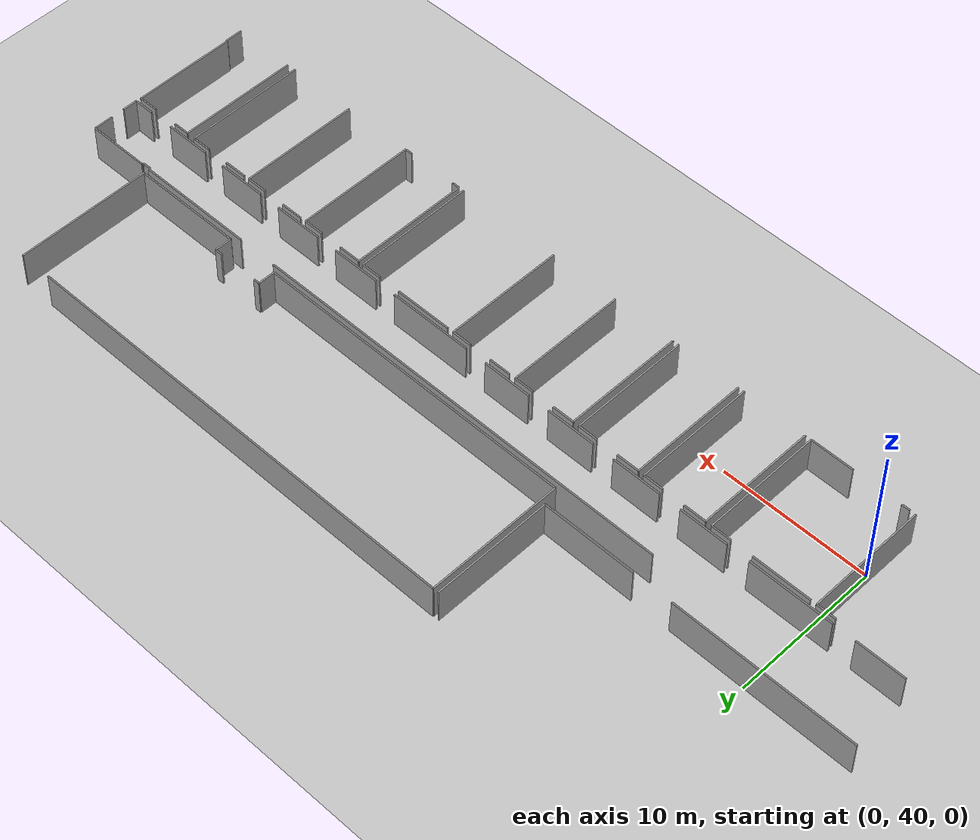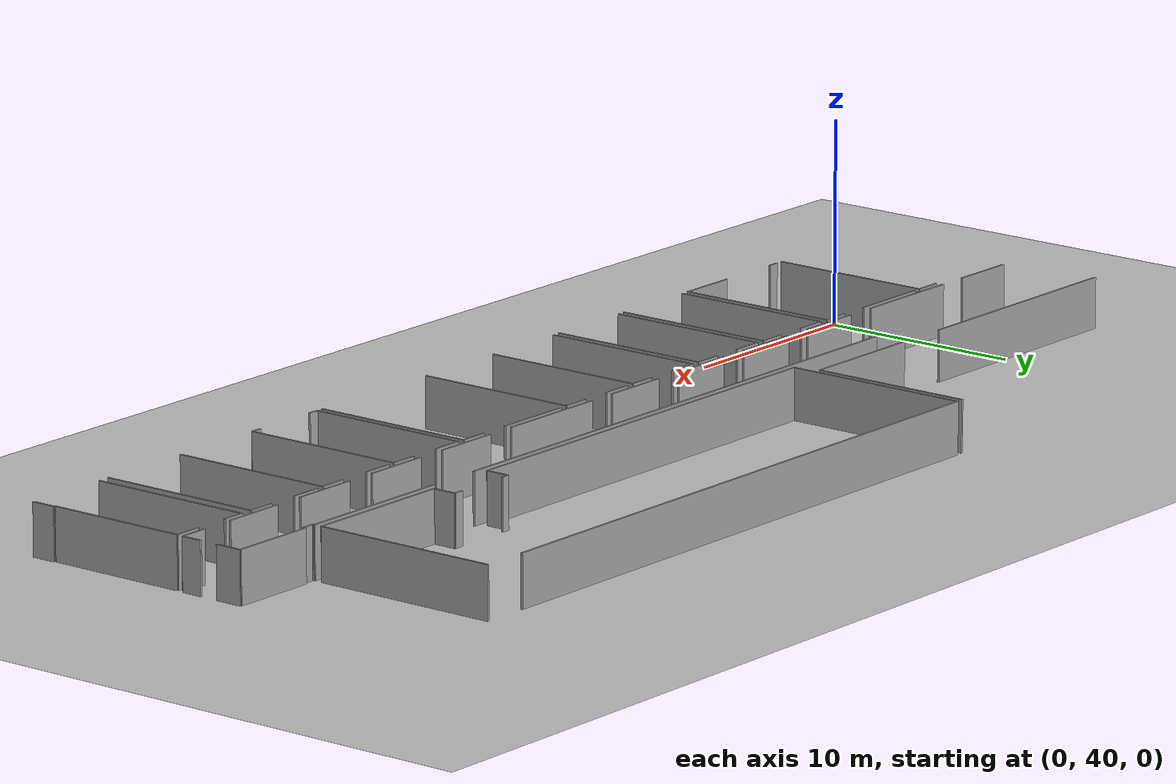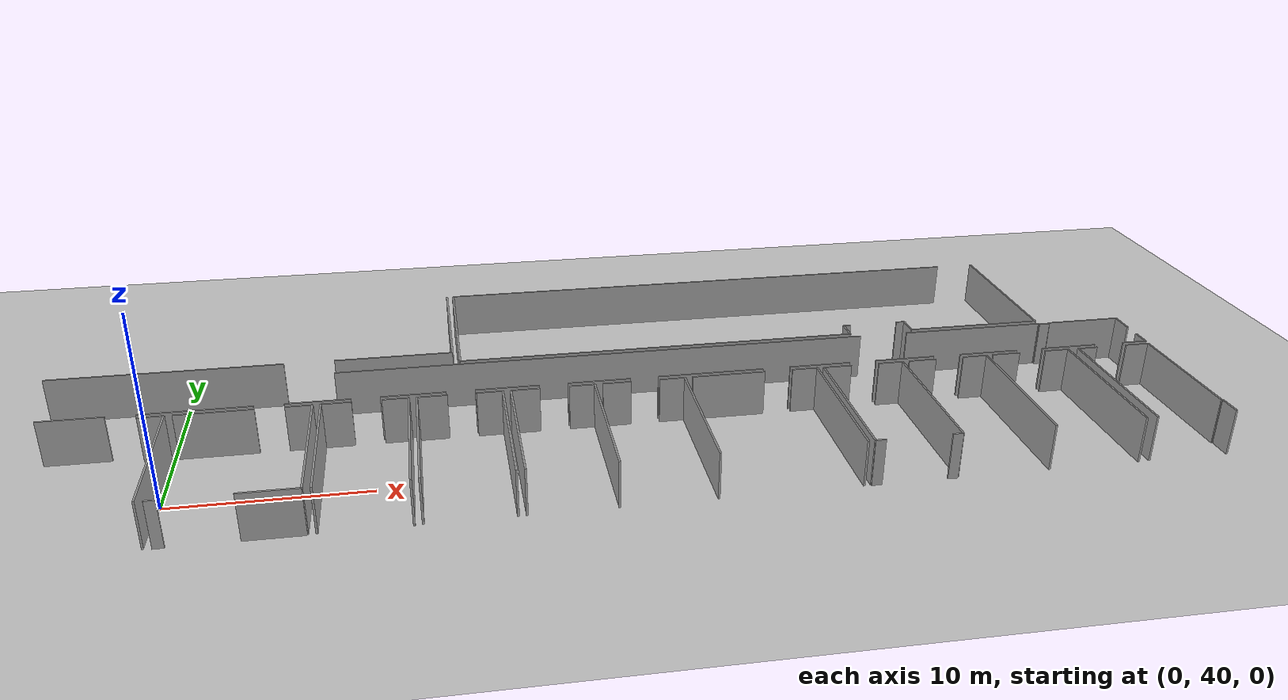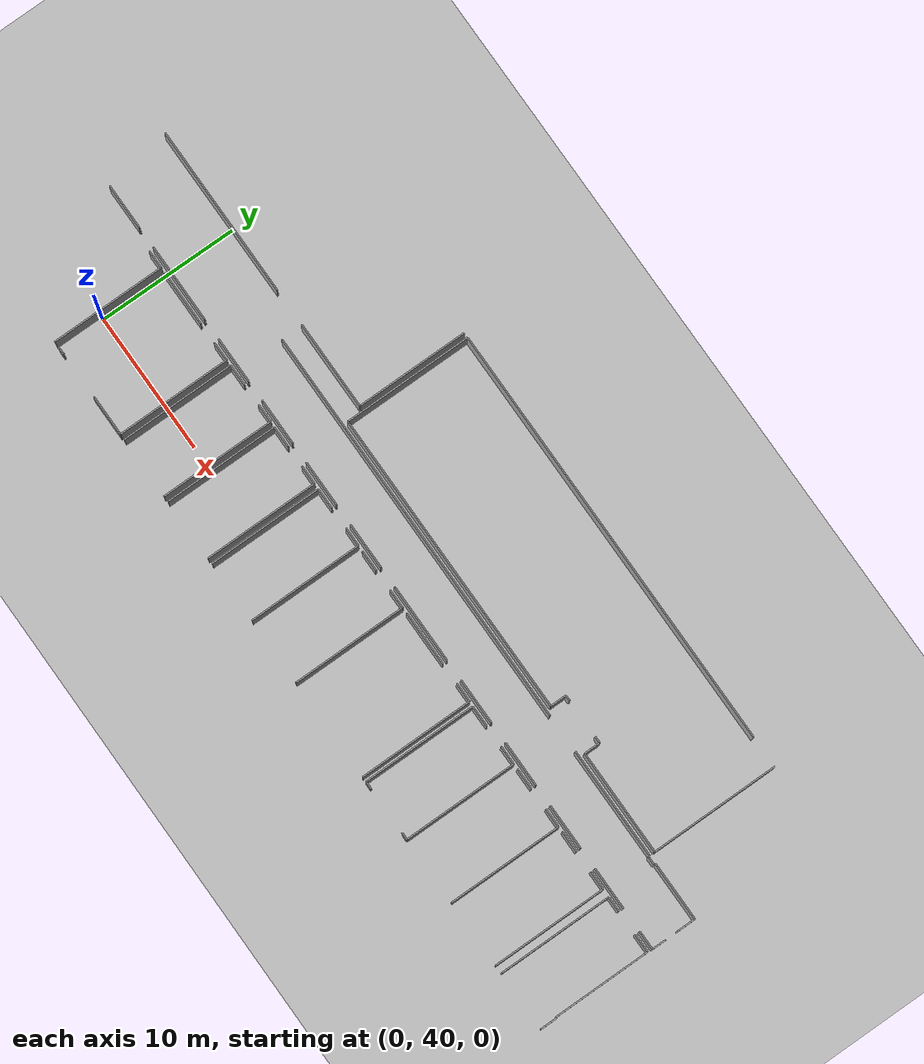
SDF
<sdf version="1.6">
 <world name="default">
  <model name="ground_plane">
   <static>1</static>
   <link name="link">
    <collision name="collision">
     <geometry><plane><normal>0 0 1</normal><size>100 100</size></plane></geometry>
     <surface><friction><ode><mu>100</mu><mu2>50</mu2></ode></friction></surface>
    </collision>
    <visual name="visual">
     <cast_shadows>0</cast_shadows>
     <geometry><plane><normal>0 0 1</normal><size>100 100</size></plane></geometry>
     <material>
      <script><uri>file://media/materials/scripts/gazebo.material</uri><name>Gazebo/Grey</name></script>
     </material>
    </visual>
   </link>
  </model>
  <model name="0510035517_A_40_1_105">
   <static>1</static>
   <link name="Wall_183">
    <collision name="Wall_183_Collision">
     <geometry><box><size>8.05474542994 0.1 2.5</size></box></geometry>
     <pose>4.02737271497 0 1.25 0 0 0</pose>
    </collision>
    <visual name="Wall_183_Visual">
     <pose>4.02737271497 0 1.25 0 0 0</pose>
     <geometry><box><size>8.05474542994 0.1 2.5</size></box></geometry>
     <material>
      <script><uri>file://media/materials/scripts/gazebo.material</uri><name>Gazebo/Grey</name></script>
      <ambient>1 1 1 1</ambient>
     </material>
    </visual>
    <pose>108.796756956 -5.78715617316 0 0 0 -1.57079632679</pose>
   </link>
   <link name="Wall_184">
    <collision name="Wall_184_Collision">
     <geometry><box><size>6.35341809471 0.1 2.5</size></box></geometry>
     <pose>3.17670904736 0 1.25 0 0 0</pose>
    </collision>
    <visual name="Wall_184_Visual">
     <pose>3.17670904736 0 1.25 0 0 0</pose>
     <geometry><box><size>6.35341809471 0.1 2.5</size></box></geometry>
     <material>
      <script><uri>file://media/materials/scripts/gazebo.material</uri><name>Gazebo/Grey</name></script>
      <ambient>1 1 1 1</ambient>
     </material>
    </visual>
    <pose>108.796756956 -13.8419016031 0 0 0 3.14159265359</pose>
   </link>
   <link name="Wall_185">
    <collision name="Wall_185_Collision">
     <geometry><box><size>12.3461873265 0.1 2.5</size></box></geometry>
     <pose>6.17309366323 0 1.25 0 0 0</pose>
    </collision>
    <visual name="Wall_185_Visual">
     <pose>6.17309366323 0 1.25 0 0 0</pose>
     <geometry><box><size>12.3461873265 0.1 2.5</size></box></geometry>
     <material>
      <script><uri>file://media/materials/scripts/gazebo.material</uri><name>Gazebo/Grey</name></script>
      <ambient>1 1 1 1</ambient>
     </material>
    </visual>
    <pose>99.767573372 -13.8419016031 0 0 0 3.14159265359</pose>
   </link>
   <link name="Wall_188">
    <collision name="Wall_188_Collision">
     <geometry><box><size>9.2393714696 0.1 2.5</size></box></geometry>
     <pose>4.6196857348 0 1.25 0 0 0</pose>
    </collision>
    <visual name="Wall_188_Visual">
     <pose>4.6196857348 0 1.25 0 0 0</pose>
     <geometry><box><size>9.2393714696 0.1 2.5</size></box></geometry>
     <material>
      <script><uri>file://media/materials/scripts/gazebo.material</uri><name>Gazebo/Grey</name></script>
      <ambient>1 1 1 1</ambient>
     </material>
    </visual>
    <pose>109.164522217 -15.0216986587 0 0 0 1.57079632679</pose>
   </link>
   <link name="Wall_189">
    <collision name="Wall_189_Collision">
     <geometry><box><size>30.957346092 0.1 2.5</size></box></geometry>
     <pose>15.478673046 0 1.25 0 0 0</pose>
    </collision>
    <visual name="Wall_189_Visual">
     <pose>15.478673046 0 1.25 0 0 0</pose>
     <geometry><box><size>30.957346092 0.1 2.5</size></box></geometry>
     <material>
      <script><uri>file://media/materials/scripts/gazebo.material</uri><name>Gazebo/Grey</name></script>
      <ambient>1 1 1 1</ambient>
     </material>
    </visual>
    <pose>109.164522217 -5.78232718909 0 0 0 0.0</pose>
   </link>
   <link name="Wall_190">
    <collision name="Wall_190_Collision">
     <geometry><box><size>9.22208878977 0.1 2.5</size></box></geometry>
     <pose>4.61104439488 0 1.25 0 0 0</pose>
    </collision>
    <visual name="Wall_190_Visual">
     <pose>4.61104439488 0 1.25 0 0 0</pose>
     <geometry><box><size>9.22208878977 0.1 2.5</size></box></geometry>
     <material>
      <script><uri>file://media/materials/scripts/gazebo.material</uri><name>Gazebo/Grey</name></script>
      <ambient>1 1 1 1</ambient>
     </material>
    </visual>
    <pose>142.356671305 -5.78232718909 0 0 0 -1.57079632679</pose>
   </link>
   <link name="Wall_191">
    <collision name="Wall_191_Collision">
     <geometry><box><size>7.53346930736 0.1 2.5</size></box></geometry>
     <pose>3.76673465368 0 1.25 0 0 0</pose>
    </collision>
    <visual name="Wall_191_Visual">
     <pose>3.76673465368 0 1.25 0 0 0</pose>
     <geometry><box><size>7.53346930736 0.1 2.5</size></box></geometry>
     <material>
      <script><uri>file://media/materials/scripts/gazebo.material</uri><name>Gazebo/Grey</name></script>
      <ambient>1 1 1 1</ambient>
     </material>
    </visual>
    <pose>142.356671305 -15.0044159789 0 0 0 3.14159265359</pose>
   </link>
   <link name="Wall_192">
    <collision name="Wall_192_Collision">
     <geometry><box><size>1.1523480935 0.1 2.5</size></box></geometry>
     <pose>0.576174046752 0 1.25 0 0 0</pose>
    </collision>
    <visual name="Wall_192_Visual">
     <pose>0.576174046752 0 1.25 0 0 0</pose>
     <geometry><box><size>1.1523480935 0.1 2.5</size></box></geometry>
     <material>
      <script><uri>file://media/materials/scripts/gazebo.material</uri><name>Gazebo/Grey</name></script>
      <ambient>1 1 1 1</ambient>
     </material>
    </visual>
    <pose>134.823201998 -15.0044159789 0 0 0 1.57079632679</pose>
   </link>
   <link name="Wall_193">
    <collision name="Wall_193_Collision">
     <geometry><box><size>0.486202448803 0.1 2.5</size></box></geometry>
     <pose>0.243101224402 0 1.25 0 0 0</pose>
    </collision>
    <visual name="Wall_193_Visual">
     <pose>0.243101224402 0 1.25 0 0 0</pose>
     <geometry><box><size>0.486202448803 0.1 2.5</size></box></geometry>
     <material>
      <script><uri>file://media/materials/scripts/gazebo.material</uri><name>Gazebo/Grey</name></script>
      <ambient>1 1 1 1</ambient>
     </material>
    </visual>
    <pose>134.823201998 -13.8520678853 0 0 0 3.14159265359</pose>
   </link>
   <link name="Wall_194">
    <collision name="Wall_194_Collision">
     <geometry><box><size>0.417580043588 0.1 2.5</size></box></geometry>
     <pose>0.208790021794 0 1.25 0 0 0</pose>
    </collision>
    <visual name="Wall_194_Visual">
     <pose>0.208790021794 0 1.25 0 0 0</pose>
     <geometry><box><size>0.417580043588 0.1 2.5</size></box></geometry>
     <material>
      <script><uri>file://media/materials/scripts/gazebo.material</uri><name>Gazebo/Grey</name></script>
      <ambient>1 1 1 1</ambient>
     </material>
    </visual>
    <pose>131.594390754 -13.8520678853 0 0 0 3.14159265359</pose>
   </link>
   <link name="Wall_195">
    <collision name="Wall_195_Collision">
     <geometry><box><size>1.16073527636 0.1 2.5</size></box></geometry>
     <pose>0.580367638182 0 1.25 0 0 0</pose>
    </collision>
    <visual name="Wall_195_Visual">
     <pose>0.580367638182 0 1.25 0 0 0</pose>
     <geometry><box><size>1.16073527636 0.1 2.5</size></box></geometry>
     <material>
      <script><uri>file://media/materials/scripts/gazebo.material</uri><name>Gazebo/Grey</name></script>
      <ambient>1 1 1 1</ambient>
     </material>
    </visual>
    <pose>131.17681071 -13.8520678853 0 0 0 -1.57079632679</pose>
   </link>
   <link name="Wall_196">
    <collision name="Wall_196_Collision">
     <geometry><box><size>22.0122902911 0.1 2.5</size></box></geometry>
     <pose>11.0061451455 0 1.25 0 0 0</pose>
    </collision>
    <visual name="Wall_196_Visual">
     <pose>11.0061451455 0 1.25 0 0 0</pose>
     <geometry><box><size>22.0122902911 0.1 2.5</size></box></geometry>
     <material>
      <script><uri>file://media/materials/scripts/gazebo.material</uri><name>Gazebo/Grey</name></script>
      <ambient>1 1 1 1</ambient>
     </material>
    </visual>
    <pose>131.17681071 -15.0128031617 0 0 0 -3.14118853857</pose>
   </link>
   <link name="Wall_197">
    <collision name="Wall_197_Collision">
     <geometry><box><size>8.18919451275 0.1 2.5</size></box></geometry>
     <pose>4.09459725637 0 1.25 0 0 0</pose>
    </collision>
    <visual name="Wall_197_Visual">
     <pose>4.09459725637 0 1.25 0 0 0</pose>
     <geometry><box><size>8.18919451275 0.1 2.5</size></box></geometry>
     <material>
      <script><uri>file://media/materials/scripts/gazebo.material</uri><name>Gazebo/Grey</name></script>
      <ambient>1 1 1 1</ambient>
     </material>
    </visual>
    <pose>142.989522375 -27.1754890935 0 0 0 1.57079632679</pose>
   </link>
   <link name="Wall_198">
    <collision name="Wall_198_Collision">
     <geometry><box><size>1.10075421106 0.1 2.5</size></box></geometry>
     <pose>0.550377105532 0 1.25 0 0 0</pose>
    </collision>
    <visual name="Wall_198_Visual">
     <pose>0.550377105532 0 1.25 0 0 0</pose>
     <geometry><box><size>1.10075421106 0.1 2.5</size></box></geometry>
     <material>
      <script><uri>file://media/materials/scripts/gazebo.material</uri><name>Gazebo/Grey</name></script>
      <ambient>1 1 1 1</ambient>
     </material>
    </visual>
    <pose>142.989522375 -18.9862945807 0 0 0 0.0</pose>
   </link>
   <link name="Wall_199">
    <collision name="Wall_199_Collision">
     <geometry><box><size>1.33661195936 0.1 2.5</size></box></geometry>
     <pose>0.66830597968 0 1.25 0 0 0</pose>
    </collision>
    <visual name="Wall_199_Visual">
     <pose>0.66830597968 0 1.25 0 0 0</pose>
     <geometry><box><size>1.33661195936 0.1 2.5</size></box></geometry>
     <material>
      <script><uri>file://media/materials/scripts/gazebo.material</uri><name>Gazebo/Grey</name></script>
      <ambient>1 1 1 1</ambient>
     </material>
    </visual>
    <pose>145.83404815 -18.9862945807 0 0 0 0.0</pose>
   </link>
   <link name="Wall_200">
    <collision name="Wall_200_Collision">
     <geometry><box><size>7.01015992833 0.1 2.5</size></box></geometry>
     <pose>3.50507996416 0 1.25 0 0 0</pose>
    </collision>
    <visual name="Wall_200_Visual">
     <pose>3.50507996416 0 1.25 0 0 0</pose>
     <geometry><box><size>7.01015992833 0.1 2.5</size></box></geometry>
     <material>
      <script><uri>file://media/materials/scripts/gazebo.material</uri><name>Gazebo/Grey</name></script>
      <ambient>1 1 1 1</ambient>
     </material>
    </visual>
    <pose>147.170660109 -18.9862945807 0 0 0 -1.57079632679</pose>
   </link>
   <link name="Wall_201">
    <collision name="Wall_201_Collision">
     <geometry><box><size>0.0681140911026 0.1 2.5</size></box></geometry>
     <pose>0.0340570455513 0 1.25 0 0 0</pose>
    </collision>
    <visual name="Wall_201_Visual">
     <pose>0.0340570455513 0 1.25 0 0 0</pose>
     <geometry><box><size>0.0681140911026 0.1 2.5</size></box></geometry>
     <material>
      <script><uri>file://media/materials/scripts/gazebo.material</uri><name>Gazebo/Grey</name></script>
      <ambient>1 1 1 1</ambient>
     </material>
    </visual>
    <pose>147.170660109 -25.9964545091 0 0 0 0.0</pose>
   </link>
   <link name="Wall_202">
    <collision name="Wall_202_Collision">
     <geometry><box><size>1.20165456244 0.1 2.5</size></box></geometry>
     <pose>0.600827281218 0 1.25 0 0 0</pose>
    </collision>
    <visual name="Wall_202_Visual">
     <pose>0.600827281218 0 1.25 0 0 0</pose>
     <geometry><box><size>1.20165456244 0.1 2.5</size></box></geometry>
     <material>
      <script><uri>file://media/materials/scripts/gazebo.material</uri><name>Gazebo/Grey</name></script>
      <ambient>1 1 1 1</ambient>
     </material>
    </visual>
    <pose>147.238774201 -25.9964545091 0 0 0 -1.57079632679</pose>
   </link>
   <link name="Wall_205">
    <collision name="Wall_205_Collision">
     <geometry><box><size>1.5501038867 0.1 2.5</size></box></geometry>
     <pose>0.775051943348 0 1.25 0 0 0</pose>
    </collision>
    <visual name="Wall_205_Visual">
     <pose>0.775051943348 0 1.25 0 0 0</pose>
     <geometry><box><size>1.5501038867 0.1 2.5</size></box></geometry>
     <material>
      <script><uri>file://media/materials/scripts/gazebo.material</uri><name>Gazebo/Grey</name></script>
      <ambient>1 1 1 1</ambient>
     </material>
    </visual>
    <pose>137.98389915 -18.9748575132 0 0 0 0.0</pose>
   </link>
   <link name="Wall_206">
    <collision name="Wall_206_Collision">
     <geometry><box><size>1.34372835694 0.1 2.5</size></box></geometry>
     <pose>0.671864178469 0 1.25 0 0 0</pose>
    </collision>
    <visual name="Wall_206_Visual">
     <pose>0.671864178469 0 1.25 0 0 0</pose>
     <geometry><box><size>1.34372835694 0.1 2.5</size></box></geometry>
     <material>
      <script><uri>file://media/materials/scripts/gazebo.material</uri><name>Gazebo/Grey</name></script>
      <ambient>1 1 1 1</ambient>
     </material>
    </visual>
    <pose>141.043950109 -18.9748575132 0 0 0 0.0</pose>
   </link>
   <link name="Wall_207">
    <collision name="Wall_207_Collision">
     <geometry><box><size>8.23163874116 0.1 2.5</size></box></geometry>
     <pose>4.11581937058 0 1.25 0 0 0</pose>
    </collision>
    <visual name="Wall_207_Visual">
     <pose>4.11581937058 0 1.25 0 0 0</pose>
     <geometry><box><size>8.23163874116 0.1 2.5</size></box></geometry>
     <material>
      <script><uri>file://media/materials/scripts/gazebo.material</uri><name>Gazebo/Grey</name></script>
      <ambient>1 1 1 1</ambient>
     </material>
    </visual>
    <pose>142.387678466 -18.9748575132 0 0 0 -1.57079632679</pose>
   </link>
   <link name="Wall_211">
    <collision name="Wall_211_Collision">
     <geometry><box><size>1.52138413933 0.1 2.5</size></box></geometry>
     <pose>0.760692069664 0 1.25 0 0 0</pose>
    </collision>
    <visual name="Wall_211_Visual">
     <pose>0.760692069664 0 1.25 0 0 0</pose>
     <geometry><box><size>1.52138413933 0.1 2.5</size></box></geometry>
     <material>
      <script><uri>file://media/materials/scripts/gazebo.material</uri><name>Gazebo/Grey</name></script>
      <ambient>1 1 1 1</ambient>
     </material>
    </visual>
    <pose>133.171435288 -18.9979858053 0 0 0 0.0</pose>
   </link>
   <link name="Wall_212">
    <collision name="Wall_212_Collision">
     <geometry><box><size>1.36253597911 0.1 2.5</size></box></geometry>
     <pose>0.681267989554 0 1.25 0 0 0</pose>
    </collision>
    <visual name="Wall_212_Visual">
     <pose>0.681267989554 0 1.25 0 0 0</pose>
     <geometry><box><size>1.36253597911 0.1 2.5</size></box></geometry>
     <material>
      <script><uri>file://media/materials/scripts/gazebo.material</uri><name>Gazebo/Grey</name></script>
      <ambient>1 1 1 1</ambient>
     </material>
    </visual>
    <pose>136.250039712 -18.9979858053 0 0 0 0.0</pose>
   </link>
   <link name="Wall_213">
    <collision name="Wall_213_Collision">
     <geometry><box><size>8.18919451275 0.1 2.5</size></box></geometry>
     <pose>4.09459725637 0 1.25 0 0 0</pose>
    </collision>
    <visual name="Wall_213_Visual">
     <pose>4.09459725637 0 1.25 0 0 0</pose>
     <geometry><box><size>8.18919451275 0.1 2.5</size></box></geometry>
     <material>
      <script><uri>file://media/materials/scripts/gazebo.material</uri><name>Gazebo/Grey</name></script>
      <ambient>1 1 1 1</ambient>
     </material>
    </visual>
    <pose>137.612575691 -18.9979858053 0 0 0 -1.57079632679</pose>
   </link>
   <link name="Wall_216">
    <collision name="Wall_216_Collision">
     <geometry><box><size>8.15386668192 0.1 2.5</size></box></geometry>
     <pose>4.07693334096 0 1.25 0 0 0</pose>
    </collision>
    <visual name="Wall_216_Visual">
     <pose>4.07693334096 0 1.25 0 0 0</pose>
     <geometry><box><size>8.15386668192 0.1 2.5</size></box></geometry>
     <material>
      <script><uri>file://media/materials/scripts/gazebo.material</uri><name>Gazebo/Grey</name></script>
      <ambient>1 1 1 1</ambient>
     </material>
    </visual>
    <pose>128.359225583 -27.1660852824 0 0 0 1.57079632679</pose>
   </link>
   <link name="Wall_217">
    <collision name="Wall_217_Collision">
     <geometry><box><size>1.54044591856 0.1 2.5</size></box></geometry>
     <pose>0.770222959278 0 1.25 0 0 0</pose>
    </collision>
    <visual name="Wall_217_Visual">
     <pose>0.770222959278 0 1.25 0 0 0</pose>
     <geometry><box><size>1.54044591856 0.1 2.5</size></box></geometry>
     <material>
      <script><uri>file://media/materials/scripts/gazebo.material</uri><name>Gazebo/Grey</name></script>
      <ambient>1 1 1 1</ambient>
     </material>
    </visual>
    <pose>128.359225583 -19.0122186005 0 0 0 0.0</pose>
   </link>
   <link name="Wall_218">
    <collision name="Wall_218_Collision">
     <geometry><box><size>1.35465711036 0.1 2.5</size></box></geometry>
     <pose>0.677328555181 0 1.25 0 0 0</pose>
    </collision>
    <visual name="Wall_218_Visual">
     <pose>0.677328555181 0 1.25 0 0 0</pose>
     <geometry><box><size>1.35465711036 0.1 2.5</size></box></geometry>
     <material>
      <script><uri>file://media/materials/scripts/gazebo.material</uri><name>Gazebo/Grey</name></script>
      <ambient>1 1 1 1</ambient>
     </material>
    </visual>
    <pose>131.436305065 -19.0122186005 0 0 0 0.0</pose>
   </link>
   <link name="Wall_219">
    <collision name="Wall_219_Collision">
     <geometry><box><size>8.16937026235 0.1 2.5</size></box></geometry>
     <pose>4.08468513118 0 1.25 0 0 0</pose>
    </collision>
    <visual name="Wall_219_Visual">
     <pose>4.08468513118 0 1.25 0 0 0</pose>
     <geometry><box><size>8.16937026235 0.1 2.5</size></box></geometry>
     <material>
      <script><uri>file://media/materials/scripts/gazebo.material</uri><name>Gazebo/Grey</name></script>
      <ambient>1 1 1 1</ambient>
     </material>
    </visual>
    <pose>132.790962175 -19.0122186005 0 0 0 -1.57079632679</pose>
   </link>
   <link name="Wall_220">
    <collision name="Wall_220_Collision">
     <geometry><box><size>0.524326007256 0.1 2.5</size></box></geometry>
     <pose>0.262163003628 0 1.25 0 0 0</pose>
    </collision>
    <visual name="Wall_220_Visual">
     <pose>0.262163003628 0 1.25 0 0 0</pose>
     <geometry><box><size>0.524326007256 0.1 2.5</size></box></geometry>
     <material>
      <script><uri>file://media/materials/scripts/gazebo.material</uri><name>Gazebo/Grey</name></script>
      <ambient>1 1 1 1</ambient>
     </material>
    </visual>
    <pose>132.790962175 -27.1815888628 0 0 0 3.14159265359</pose>
   </link>
   <link name="Wall_221">
    <collision name="Wall_221_Collision">
     <geometry><box><size>0.533700892064 0.1 2.5</size></box></geometry>
     <pose>0.266850446032 0 1.25 0 0 0</pose>
    </collision>
    <visual name="Wall_221_Visual">
     <pose>0.266850446032 0 1.25 0 0 0</pose>
     <geometry><box><size>0.533700892064 0.1 2.5</size></box></geometry>
     <material>
      <script><uri>file://media/materials/scripts/gazebo.material</uri><name>Gazebo/Grey</name></script>
      <ambient>1 1 1 1</ambient>
     </material>
    </visual>
    <pose>128.892701245 -27.1815888628 0 0 0 3.11253937307</pose>
   </link>
   <link name="Wall_223">
    <collision name="Wall_223_Collision">
     <geometry><box><size>3.92316832186 0.1 2.5</size></box></geometry>
     <pose>1.96158416093 0 1.25 0 0 0</pose>
    </collision>
    <visual name="Wall_223_Visual">
     <pose>1.96158416093 0 1.25 0 0 0</pose>
     <geometry><box><size>3.92316832186 0.1 2.5</size></box></geometry>
     <material>
      <script><uri>file://media/materials/scripts/gazebo.material</uri><name>Gazebo/Grey</name></script>
      <ambient>1 1 1 1</ambient>
     </material>
    </visual>
    <pose>121.183101097 -18.9926485071 0 0 0 0.0</pose>
   </link>
   <link name="Wall_224">
    <collision name="Wall_224_Collision">
     <geometry><box><size>1.37931034483 0.1 2.5</size></box></geometry>
     <pose>0.689655172414 0 1.25 0 0 0</pose>
    </collision>
    <visual name="Wall_224_Visual">
     <pose>0.689655172414 0 1.25 0 0 0</pose>
     <geometry><box><size>1.37931034483 0.1 2.5</size></box></geometry>
     <material>
      <script><uri>file://media/materials/scripts/gazebo.material</uri><name>Gazebo/Grey</name></script>
      <ambient>1 1 1 1</ambient>
     </material>
    </visual>
    <pose>126.620537161 -18.9926485071 0 0 0 0.0</pose>
   </link>
   <link name="Wall_225">
    <collision name="Wall_225_Collision">
     <geometry><box><size>8.2110520196 0.1 2.5</size></box></geometry>
     <pose>4.1055260098 0 1.25 0 0 0</pose>
    </collision>
    <visual name="Wall_225_Visual">
     <pose>4.1055260098 0 1.25 0 0 0</pose>
     <geometry><box><size>8.2110520196 0.1 2.5</size></box></geometry>
     <material>
      <script><uri>file://media/materials/scripts/gazebo.material</uri><name>Gazebo/Grey</name></script>
      <ambient>1 1 1 1</ambient>
     </material>
    </visual>
    <pose>127.999847506 -18.9926485071 0 0 0 -1.57079632679</pose>
   </link>
   <link name="Wall_229">
    <collision name="Wall_229_Collision">
     <geometry><box><size>1.4982558472 0.1 2.5</size></box></geometry>
     <pose>0.7491279236 0 1.25 0 0 0</pose>
    </collision>
    <visual name="Wall_229_Visual">
     <pose>0.7491279236 0 1.25 0 0 0</pose>
     <geometry><box><size>1.4982558472 0.1 2.5</size></box></geometry>
     <material>
      <script><uri>file://media/materials/scripts/gazebo.material</uri><name>Gazebo/Grey</name></script>
      <ambient>1 1 1 1</ambient>
     </material>
    </visual>
    <pose>116.385124187 -19.0076437735 0 0 0 0.0</pose>
   </link>
   <link name="Wall_230">
    <collision name="Wall_230_Collision">
     <geometry><box><size>1.35694452387 0.1 2.5</size></box></geometry>
     <pose>0.678472261934 0 1.25 0 0 0</pose>
    </collision>
    <visual name="Wall_230_Visual">
     <pose>0.678472261934 0 1.25 0 0 0</pose>
     <geometry><box><size>1.35694452387 0.1 2.5</size></box></geometry>
     <material>
      <script><uri>file://media/materials/scripts/gazebo.material</uri><name>Gazebo/Grey</name></script>
      <ambient>1 1 1 1</ambient>
     </material>
    </visual>
    <pose>119.400697661 -19.0076437735 0 0 0 0.0</pose>
   </link>
   <link name="Wall_231">
    <collision name="Wall_231_Collision">
     <geometry><box><size>8.18970282686 0.1 2.5</size></box></geometry>
     <pose>4.09485141343 0 1.25 0 0 0</pose>
    </collision>
    <visual name="Wall_231_Visual">
     <pose>4.09485141343 0 1.25 0 0 0</pose>
     <geometry><box><size>8.18970282686 0.1 2.5</size></box></geometry>
     <material>
      <script><uri>file://media/materials/scripts/gazebo.material</uri><name>Gazebo/Grey</name></script>
      <ambient>1 1 1 1</ambient>
     </material>
    </visual>
    <pose>120.757642185 -19.0076437735 0 0 0 -1.57079632679</pose>
   </link>
   <link name="Wall_234">
    <collision name="Wall_234_Collision">
     <geometry><box><size>8.15767903776 0.1 2.5</size></box></geometry>
     <pose>4.07883951888 0 1.25 0 0 0</pose>
    </collision>
    <visual name="Wall_234_Visual">
     <pose>4.07883951888 0 1.25 0 0 0</pose>
     <geometry><box><size>8.15767903776 0.1 2.5</size></box></geometry>
     <material>
      <script><uri>file://media/materials/scripts/gazebo.material</uri><name>Gazebo/Grey</name></script>
      <ambient>1 1 1 1</ambient>
     </material>
    </visual>
    <pose>111.581555822 -27.1676102247 0 0 0 1.57079632679</pose>
   </link>
   <link name="Wall_235">
    <collision name="Wall_235_Collision">
     <geometry><box><size>1.49622259075 0.1 2.5</size></box></geometry>
     <pose>0.748111295375 0 1.25 0 0 0</pose>
    </collision>
    <visual name="Wall_235_Visual">
     <pose>0.748111295375 0 1.25 0 0 0</pose>
     <geometry><box><size>1.49622259075 0.1 2.5</size></box></geometry>
     <material>
      <script><uri>file://media/materials/scripts/gazebo.material</uri><name>Gazebo/Grey</name></script>
      <ambient>1 1 1 1</ambient>
     </material>
    </visual>
    <pose>111.581555822 -19.009931187 0 0 0 0.0</pose>
   </link>
   <link name="Wall_236">
    <collision name="Wall_236_Collision">
     <geometry><box><size>1.34728655573 0.1 2.5</size></box></geometry>
     <pose>0.673643277864 0 1.25 0 0 0</pose>
    </collision>
    <visual name="Wall_236_Visual">
     <pose>0.673643277864 0 1.25 0 0 0</pose>
     <geometry><box><size>1.34728655573 0.1 2.5</size></box></geometry>
     <material>
      <script><uri>file://media/materials/scripts/gazebo.material</uri><name>Gazebo/Grey</name></script>
      <ambient>1 1 1 1</ambient>
     </material>
    </visual>
    <pose>114.615682761 -19.009931187 0 0 0 0.0</pose>
   </link>
   <link name="Wall_237">
    <collision name="Wall_237_Collision">
     <geometry><box><size>8.17928238755 0.1 2.5</size></box></geometry>
     <pose>4.08964119378 0 1.25 0 0 0</pose>
    </collision>
    <visual name="Wall_237_Visual">
     <pose>4.08964119378 0 1.25 0 0 0</pose>
     <geometry><box><size>8.17928238755 0.1 2.5</size></box></geometry>
     <material>
      <script><uri>file://media/materials/scripts/gazebo.material</uri><name>Gazebo/Grey</name></script>
      <ambient>1 1 1 1</ambient>
     </material>
    </visual>
    <pose>115.962969317 -19.009931187 0 0 0 -1.57079632679</pose>
   </link>
   <link name="Wall_240">
    <collision name="Wall_240_Collision">
     <geometry><box><size>8.17114936175 0.1 2.5</size></box></geometry>
     <pose>4.08557468087 0 1.25 0 0 0</pose>
    </collision>
    <visual name="Wall_240_Visual">
     <pose>4.08557468087 0 1.25 0 0 0</pose>
     <geometry><box><size>8.17114936175 0.1 2.5</size></box></geometry>
     <material>
      <script><uri>file://media/materials/scripts/gazebo.material</uri><name>Gazebo/Grey</name></script>
      <ambient>1 1 1 1</ambient>
     </material>
    </visual>
    <pose>106.772904316 -27.1785389782 0 0 0 1.57079632679</pose>
   </link>
   <link name="Wall_241">
    <collision name="Wall_241_Collision">
     <geometry><box><size>1.55061220081 0.1 2.5</size></box></geometry>
     <pose>0.775306100405 0 1.25 0 0 0</pose>
    </collision>
    <visual name="Wall_241_Visual">
     <pose>0.775306100405 0 1.25 0 0 0</pose>
     <geometry><box><size>1.55061220081 0.1 2.5</size></box></geometry>
     <material>
      <script><uri>file://media/materials/scripts/gazebo.material</uri><name>Gazebo/Grey</name></script>
      <ambient>1 1 1 1</ambient>
     </material>
    </visual>
    <pose>106.772904316 -19.0073896164 0 0 0 0.0</pose>
   </link>
   <link name="Wall_242">
    <collision name="Wall_242_Collision">
     <geometry><box><size>1.35084475452 0.1 2.5</size></box></geometry>
     <pose>0.675422377258 0 1.25 0 0 0</pose>
    </collision>
    <visual name="Wall_242_Visual">
     <pose>0.675422377258 0 1.25 0 0 0</pose>
     <geometry><box><size>1.35084475452 0.1 2.5</size></box></geometry>
     <material>
      <script><uri>file://media/materials/scripts/gazebo.material</uri><name>Gazebo/Grey</name></script>
      <ambient>1 1 1 1</ambient>
     </material>
    </visual>
    <pose>109.813639338 -19.0073896164 0 0 0 0.0</pose>
   </link>
   <link name="Wall_243">
    <collision name="Wall_243_Collision">
     <geometry><box><size>8.18004485872 0.1 2.5</size></box></geometry>
     <pose>4.09002242936 0 1.25 0 0 0</pose>
    </collision>
    <visual name="Wall_243_Visual">
     <pose>4.09002242936 0 1.25 0 0 0</pose>
     <geometry><box><size>8.18004485872 0.1 2.5</size></box></geometry>
     <material>
      <script><uri>file://media/materials/scripts/gazebo.material</uri><name>Gazebo/Grey</name></script>
      <ambient>1 1 1 1</ambient>
     </material>
    </visual>
    <pose>111.164484093 -19.0073896164 0 0 0 -1.57079632679</pose>
   </link>
   <link name="Wall_246">
    <collision name="Wall_246_Collision">
     <geometry><box><size>8.18589047102 0.1 2.5</size></box></geometry>
     <pose>4.09294523551 0 1.25 0 0 0</pose>
    </collision>
    <visual name="Wall_246_Visual">
     <pose>4.09294523551 0 1.25 0 0 0</pose>
     <geometry><box><size>8.18589047102 0.1 2.5</size></box></geometry>
     <material>
      <script><uri>file://media/materials/scripts/gazebo.material</uri><name>Gazebo/Grey</name></script>
      <ambient>1 1 1 1</ambient>
     </material>
    </visual>
    <pose>101.973402464 -27.1785389782 0 0 0 1.57079632679</pose>
   </link>
   <link name="Wall_247">
    <collision name="Wall_247_Collision">
     <geometry><box><size>1.52545065223 0.1 2.5</size></box></geometry>
     <pose>0.762725326115 0 1.25 0 0 0</pose>
    </collision>
    <visual name="Wall_247_Visual">
     <pose>0.762725326115 0 1.25 0 0 0</pose>
     <geometry><box><size>1.52545065223 0.1 2.5</size></box></geometry>
     <material>
      <script><uri>file://media/materials/scripts/gazebo.material</uri><name>Gazebo/Grey</name></script>
      <ambient>1 1 1 1</ambient>
     </material>
    </visual>
    <pose>101.973402464 -18.9926485071 0 0 0 0.0</pose>
   </link>
   <link name="Wall_248">
    <collision name="Wall_248_Collision">
     <geometry><box><size>1.35109891157 0.1 2.5</size></box></geometry>
     <pose>0.675549455786 0 1.25 0 0 0</pose>
    </collision>
    <visual name="Wall_248_Visual">
     <pose>0.675549455786 0 1.25 0 0 0</pose>
     <geometry><box><size>1.35109891157 0.1 2.5</size></box></geometry>
     <material>
      <script><uri>file://media/materials/scripts/gazebo.material</uri><name>Gazebo/Grey</name></script>
      <ambient>1 1 1 1</ambient>
     </material>
    </visual>
    <pose>105.014137486 -18.9926485071 0 0 0 0.0</pose>
   </link>
   <link name="Wall_249">
    <collision name="Wall_249_Collision">
     <geometry><box><size>8.21079786254 0.1 2.5</size></box></geometry>
     <pose>4.10539893127 0 1.25 0 0 0</pose>
    </collision>
    <visual name="Wall_249_Visual">
     <pose>4.10539893127 0 1.25 0 0 0</pose>
     <geometry><box><size>8.21079786254 0.1 2.5</size></box></geometry>
     <material>
      <script><uri>file://media/materials/scripts/gazebo.material</uri><name>Gazebo/Grey</name></script>
      <ambient>1 1 1 1</ambient>
     </material>
    </visual>
    <pose>106.365236398 -18.9926485071 0 0 0 -1.57079632679</pose>
   </link>
   <link name="Wall_253">
    <collision name="Wall_253_Collision">
     <geometry><box><size>3.96637502144 0.1 2.5</size></box></geometry>
     <pose>1.98318751072 0 1.25 0 0 0</pose>
    </collision>
    <visual name="Wall_253_Visual">
     <pose>1.98318751072 0 1.25 0 0 0</pose>
     <geometry><box><size>3.96637502144 0.1 2.5</size></box></geometry>
     <material>
      <script><uri>file://media/materials/scripts/gazebo.material</uri><name>Gazebo/Grey</name></script>
      <ambient>1 1 1 1</ambient>
     </material>
    </visual>
    <pose>94.7550879066 -19.00535636 0 0 0 0.0</pose>
   </link>
   <link name="Wall_254">
    <collision name="Wall_254_Collision">
     <geometry><box><size>1.35694452387 0.1 2.5</size></box></geometry>
     <pose>0.678472261934 0 1.25 0 0 0</pose>
    </collision>
    <visual name="Wall_254_Visual">
     <pose>0.678472261934 0 1.25 0 0 0</pose>
     <geometry><box><size>1.35694452387 0.1 2.5</size></box></geometry>
     <material>
      <script><uri>file://media/materials/scripts/gazebo.material</uri><name>Gazebo/Grey</name></script>
      <ambient>1 1 1 1</ambient>
     </material>
    </visual>
    <pose>100.201673624 -19.00535636 0 0 0 0.0</pose>
   </link>
   <link name="Wall_255">
    <collision name="Wall_255_Collision">
     <geometry><box><size>8.16199970772 0.1 2.5</size></box></geometry>
     <pose>4.08099985386 0 1.25 0 0 0</pose>
    </collision>
    <visual name="Wall_255_Visual">
     <pose>4.08099985386 0 1.25 0 0 0</pose>
     <geometry><box><size>8.16199970772 0.1 2.5</size></box></geometry>
     <material>
      <script><uri>file://media/materials/scripts/gazebo.material</uri><name>Gazebo/Grey</name></script>
      <ambient>1 1 1 1</ambient>
     </material>
    </visual>
    <pose>101.558618148 -19.00535636 0 0 0 -1.57079632679</pose>
   </link>
   <link name="Wall_256">
    <collision name="Wall_256_Collision">
     <geometry><box><size>2.93754725733 0.1 2.5</size></box></geometry>
     <pose>1.46877362866 0 1.25 0 0 0</pose>
    </collision>
    <visual name="Wall_256_Visual">
     <pose>1.46877362866 0 1.25 0 0 0</pose>
     <geometry><box><size>2.93754725733 0.1 2.5</size></box></geometry>
     <material>
      <script><uri>file://media/materials/scripts/gazebo.material</uri><name>Gazebo/Grey</name></script>
      <ambient>1 1 1 1</ambient>
     </material>
    </visual>
    <pose>101.558618148 -27.1673560677 0 0 0 3.14159265359</pose>
   </link>
   <link name="Wall_257">
    <collision name="Wall_257_Collision">
     <geometry><box><size>0.546382403981 0.1 2.5</size></box></geometry>
     <pose>0.27319120199 0 1.25 0 0 0</pose>
    </collision>
    <visual name="Wall_257_Visual">
     <pose>0.27319120199 0 1.25 0 0 0</pose>
     <geometry><box><size>0.546382403981 0.1 2.5</size></box></geometry>
     <material>
      <script><uri>file://media/materials/scripts/gazebo.material</uri><name>Gazebo/Grey</name></script>
      <ambient>1 1 1 1</ambient>
     </material>
    </visual>
    <pose>95.3012714207 -27.1673560677 0 0 0 -3.11460990658</pose>
   </link>
   <link name="Wall_260">
    <collision name="Wall_260_Collision">
     <geometry><box><size>1.29950502913 0.1 2.5</size></box></geometry>
     <pose>0.649752514566 0 1.25 0 0 0</pose>
    </collision>
    <visual name="Wall_260_Visual">
     <pose>0.649752514566 0 1.25 0 0 0</pose>
     <geometry><box><size>1.29950502913 0.1 2.5</size></box></geometry>
     <material>
      <script><uri>file://media/materials/scripts/gazebo.material</uri><name>Gazebo/Grey</name></script>
      <ambient>1 1 1 1</ambient>
     </material>
    </visual>
    <pose>93.0507106867 -18.9982399624 0 0 0 0.0</pose>
   </link>
   <link name="Wall_261">
    <collision name="Wall_261_Collision">
     <geometry><box><size>8.18385721457 0.1 2.5</size></box></geometry>
     <pose>4.09192860728 0 1.25 0 0 0</pose>
    </collision>
    <visual name="Wall_261_Visual">
     <pose>4.09192860728 0 1.25 0 0 0</pose>
     <geometry><box><size>8.18385721457 0.1 2.5</size></box></geometry>
     <material>
      <script><uri>file://media/materials/scripts/gazebo.material</uri><name>Gazebo/Grey</name></script>
      <ambient>1 1 1 1</ambient>
     </material>
    </visual>
    <pose>94.3502157158 -18.9982399624 0 0 0 -1.57079632679</pose>
   </link>
   <link name="Wall_295">
    <collision name="Wall_295_Collision">
     <geometry><box><size>29.1543559342 0.1 2.5</size></box></geometry>
     <pose>14.5771779671 0 1.25 0 0 0</pose>
    </collision>
    <visual name="Wall_295_Visual">
     <pose>14.5771779671 0 1.25 0 0 0</pose>
     <geometry><box><size>29.1543559342 0.1 2.5</size></box></geometry>
     <material>
      <script><uri>file://media/materials/scripts/gazebo.material</uri><name>Gazebo/Grey</name></script>
      <ambient>1 1 1 1</ambient>
     </material>
    </visual>
    <pose>102.492899487 -15.401917615 0 0 0 0.0</pose>
   </link>
   <link name="Wall_296">
    <collision name="Wall_296_Collision">
     <geometry><box><size>8.01789265677 0.1 2.5</size></box></geometry>
     <pose>4.00894632838 0 1.25 0 0 0</pose>
    </collision>
    <visual name="Wall_296_Visual">
     <pose>4.00894632838 0 1.25 0 0 0</pose>
     <geometry><box><size>8.01789265677 0.1 2.5</size></box></geometry>
     <material>
      <script><uri>file://media/materials/scripts/gazebo.material</uri><name>Gazebo/Grey</name></script>
      <ambient>1 1 1 1</ambient>
     </material>
    </visual>
    <pose>134.371564909 -15.401917615 0 0 0 0.0</pose>
   </link>
   <link name="Wall_297">
    <collision name="Wall_297_Collision">
     <geometry><box><size>0.0998837231467 0.1 2.5</size></box></geometry>
     <pose>0.0499418615734 0 1.25 0 0 0</pose>
    </collision>
    <visual name="Wall_297_Visual">
     <pose>0.0499418615734 0 1.25 0 0 0</pose>
     <geometry><box><size>0.0998837231467 0.1 2.5</size></box></geometry>
     <material>
      <script><uri>file://media/materials/scripts/gazebo.material</uri><name>Gazebo/Grey</name></script>
      <ambient>1 1 1 1</ambient>
     </material>
    </visual>
    <pose>142.389457565 -15.401917615 0 0 0 -1.57079632679</pose>
   </link>
   <link name="Wall_298">
    <collision name="Wall_298_Collision">
     <geometry><box><size>0.589898527795 0.1 2.5</size></box></geometry>
     <pose>0.294949263898 0 1.25 0 0 0</pose>
    </collision>
    <visual name="Wall_298_Visual">
     <pose>0.294949263898 0 1.25 0 0 0</pose>
     <geometry><box><size>0.589898527795 0.1 2.5</size></box></geometry>
     <material>
      <script><uri>file://media/materials/scripts/gazebo.material</uri><name>Gazebo/Grey</name></script>
      <ambient>1 1 1 1</ambient>
     </material>
    </visual>
    <pose>142.389457565 -15.5018013381 0 0 0 0.0</pose>
   </link>
   <link name="Wall_299">
    <collision name="Wall_299_Collision">
     <geometry><box><size>0.103696078992 0.1 2.5</size></box></geometry>
     <pose>0.051848039496 0 1.25 0 0 0</pose>
    </collision>
    <visual name="Wall_299_Visual">
     <pose>0.051848039496 0 1.25 0 0 0</pose>
     <geometry><box><size>0.103696078992 0.1 2.5</size></box></geometry>
     <material>
      <script><uri>file://media/materials/scripts/gazebo.material</uri><name>Gazebo/Grey</name></script>
      <ambient>1 1 1 1</ambient>
     </material>
    </visual>
    <pose>142.979356093 -15.5018013381 0 0 0 1.57079632679</pose>
   </link>
   <link name="Wall_300">
    <collision name="Wall_300_Collision">
     <geometry><box><size>4.22891926066 0.1 2.5</size></box></geometry>
     <pose>2.11445963033 0 1.25 0 0 0</pose>
    </collision>
    <visual name="Wall_300_Visual">
     <pose>2.11445963033 0 1.25 0 0 0</pose>
     <geometry><box><size>4.22891926066 0.1 2.5</size></box></geometry>
     <material>
      <script><uri>file://media/materials/scripts/gazebo.material</uri><name>Gazebo/Grey</name></script>
      <ambient>1 1 1 1</ambient>
     </material>
    </visual>
    <pose>142.979356093 -15.3981052591 0 0 0 0.0</pose>
   </link>
   <link name="Wall_301">
    <collision name="Wall_301_Collision">
     <geometry><box><size>1.32593736299 0.1 2.5</size></box></geometry>
     <pose>0.662968681497 0 1.25 0 0 0</pose>
    </collision>
    <visual name="Wall_301_Visual">
     <pose>0.662968681497 0 1.25 0 0 0</pose>
     <geometry><box><size>1.32593736299 0.1 2.5</size></box></geometry>
     <material>
      <script><uri>file://media/materials/scripts/gazebo.material</uri><name>Gazebo/Grey</name></script>
      <ambient>1 1 1 1</ambient>
     </material>
    </visual>
    <pose>147.208275354 -15.3981052591 0 0 0 -1.57079632679</pose>
   </link>
   <link name="Wall_302">
    <collision name="Wall_302_Collision">
     <geometry><box><size>1.02069473831 0.1 2.5</size></box></geometry>
     <pose>0.510347369157 0 1.25 0 0 0</pose>
    </collision>
    <visual name="Wall_302_Visual">
     <pose>0.510347369157 0 1.25 0 0 0</pose>
     <geometry><box><size>1.02069473831 0.1 2.5</size></box></geometry>
     <material>
      <script><uri>file://media/materials/scripts/gazebo.material</uri><name>Gazebo/Grey</name></script>
      <ambient>1 1 1 1</ambient>
     </material>
    </visual>
    <pose>147.208275354 -17.6318916274 0 0 0 -1.57079632679</pose>
   </link>
   <link name="Wall_303">
    <collision name="Wall_303_Collision">
     <geometry><box><size>1.38693505652 0.1 2.5</size></box></geometry>
     <pose>0.693467528259 0 1.25 0 0 0</pose>
    </collision>
    <visual name="Wall_303_Visual">
     <pose>0.693467528259 0 1.25 0 0 0</pose>
     <geometry><box><size>1.38693505652 0.1 2.5</size></box></geometry>
     <material>
      <script><uri>file://media/materials/scripts/gazebo.material</uri><name>Gazebo/Grey</name></script>
      <ambient>1 1 1 1</ambient>
     </material>
    </visual>
    <pose>147.208275354 -18.6525863657 0 0 0 3.14159265359</pose>
   </link>
   <link name="Wall_304">
    <collision name="Wall_304_Collision">
     <geometry><box><size>3.09817451694 0.1 2.5</size></box></geometry>
     <pose>1.54908725847 0 1.25 0 0 0</pose>
    </collision>
    <visual name="Wall_304_Visual">
     <pose>1.54908725847 0 1.25 0 0 0</pose>
     <geometry><box><size>3.09817451694 0.1 2.5</size></box></geometry>
     <material>
      <script><uri>file://media/materials/scripts/gazebo.material</uri><name>Gazebo/Grey</name></script>
      <ambient>1 1 1 1</ambient>
     </material>
    </visual>
    <pose>144.121792061 -18.6525863657 0 0 0 3.14159265359</pose>
   </link>
   <link name="Wall_305">
    <collision name="Wall_305_Collision">
     <geometry><box><size>3.2964170209 0.1 2.5</size></box></geometry>
     <pose>1.64820851045 0 1.25 0 0 0</pose>
    </collision>
    <visual name="Wall_305_Visual">
     <pose>1.64820851045 0 1.25 0 0 0</pose>
     <geometry><box><size>3.2964170209 0.1 2.5</size></box></geometry>
     <material>
      <script><uri>file://media/materials/scripts/gazebo.material</uri><name>Gazebo/Grey</name></script>
      <ambient>1 1 1 1</ambient>
     </material>
    </visual>
    <pose>139.515195415 -18.6525863657 0 0 0 3.14159265359</pose>
   </link>
   <link name="Wall_306">
    <collision name="Wall_306_Collision">
     <geometry><box><size>3.29438376445 0.1 2.5</size></box></geometry>
     <pose>1.64719188222 0 1.25 0 0 0</pose>
    </collision>
    <visual name="Wall_306_Visual">
     <pose>1.64719188222 0 1.25 0 0 0</pose>
     <geometry><box><size>3.29438376445 0.1 2.5</size></box></geometry>
     <material>
      <script><uri>file://media/materials/scripts/gazebo.material</uri><name>Gazebo/Grey</name></script>
      <ambient>1 1 1 1</ambient>
     </material>
    </visual>
    <pose>134.693327742 -18.6525863657 0 0 0 3.14159265359</pose>
   </link>
   <link name="Wall_307">
    <collision name="Wall_307_Collision">
     <geometry><box><size>3.31725789952 0.1 2.5</size></box></geometry>
     <pose>1.65862894976 0 1.25 0 0 0</pose>
    </collision>
    <visual name="Wall_307_Visual">
     <pose>1.65862894976 0 1.25 0 0 0</pose>
     <geometry><box><size>3.31725789952 0.1 2.5</size></box></geometry>
     <material>
      <script><uri>file://media/materials/scripts/gazebo.material</uri><name>Gazebo/Grey</name></script>
      <ambient>1 1 1 1</ambient>
     </material>
    </visual>
    <pose>129.904754643 -18.6525863657 0 0 0 3.14159265359</pose>
   </link>
   <link name="Wall_308">
    <collision name="Wall_308_Collision">
     <geometry><box><size>5.70735085746 0.1 2.5</size></box></geometry>
     <pose>2.85367542873 0 1.25 0 0 0</pose>
    </collision>
    <visual name="Wall_308_Visual">
     <pose>2.85367542873 0 1.25 0 0 0</pose>
     <geometry><box><size>5.70735085746 0.1 2.5</size></box></geometry>
     <material>
      <script><uri>file://media/materials/scripts/gazebo.material</uri><name>Gazebo/Grey</name></script>
      <ambient>1 1 1 1</ambient>
     </material>
    </visual>
    <pose>125.092290781 -18.6525863657 0 0 0 3.14159265359</pose>
   </link>
   <link name="Wall_309">
    <collision name="Wall_309_Collision">
     <geometry><box><size>3.33276147996 0.1 2.5</size></box></geometry>
     <pose>1.66638073998 0 1.25 0 0 0</pose>
    </collision>
    <visual name="Wall_309_Visual">
     <pose>1.66638073998 0 1.25 0 0 0</pose>
     <geometry><box><size>3.33276147996 0.1 2.5</size></box></geometry>
     <material>
      <script><uri>file://media/materials/scripts/gazebo.material</uri><name>Gazebo/Grey</name></script>
      <ambient>1 1 1 1</ambient>
     </material>
    </visual>
    <pose>117.914641353 -18.6525863657 0 0 0 3.14159265359</pose>
   </link>
   <link name="Wall_310">
    <collision name="Wall_310_Collision">
     <geometry><box><size>3.31827452774 0.1 2.5</size></box></geometry>
     <pose>1.65913726387 0 1.25 0 0 0</pose>
    </collision>
    <visual name="Wall_310_Visual">
     <pose>1.65913726387 0 1.25 0 0 0</pose>
     <geometry><box><size>3.31827452774 0.1 2.5</size></box></geometry>
     <material>
      <script><uri>file://media/materials/scripts/gazebo.material</uri><name>Gazebo/Grey</name></script>
      <ambient>1 1 1 1</ambient>
     </material>
    </visual>
    <pose>113.082861554 -18.6525863657 0 0 0 3.14159265359</pose>
   </link>
   <link name="Wall_311">
    <collision name="Wall_311_Collision">
     <geometry><box><size>3.35334820152 0.1 2.5</size></box></geometry>
     <pose>1.67667410076 0 1.25 0 0 0</pose>
    </collision>
    <visual name="Wall_311_Visual">
     <pose>1.67667410076 0 1.25 0 0 0</pose>
     <geometry><box><size>3.35334820152 0.1 2.5</size></box></geometry>
     <material>
      <script><uri>file://media/materials/scripts/gazebo.material</uri><name>Gazebo/Grey</name></script>
      <ambient>1 1 1 1</ambient>
     </material>
    </visual>
    <pose>108.285138802 -18.6525863657 0 0 0 3.14159265359</pose>
   </link>
   <link name="Wall_312">
    <collision name="Wall_312_Collision">
     <geometry><box><size>3.3045500467 0.1 2.5</size></box></geometry>
     <pose>1.65227502335 0 1.25 0 0 0</pose>
    </collision>
    <visual name="Wall_312_Visual">
     <pose>1.65227502335 0 1.25 0 0 0</pose>
     <geometry><box><size>3.3045500467 0.1 2.5</size></box></geometry>
     <material>
      <script><uri>file://media/materials/scripts/gazebo.material</uri><name>Gazebo/Grey</name></script>
      <ambient>1 1 1 1</ambient>
     </material>
    </visual>
    <pose>103.459967087 -18.6525863657 0 0 0 3.14159265359</pose>
   </link>
   <link name="Wall_313">
    <collision name="Wall_313_Collision">
     <geometry><box><size>5.66236505849 0.1 2.5</size></box></geometry>
     <pose>2.83118252924 0 1.25 0 0 0</pose>
    </collision>
    <visual name="Wall_313_Visual">
     <pose>2.83118252924 0 1.25 0 0 0</pose>
     <geometry><box><size>5.66236505849 0.1 2.5</size></box></geometry>
     <material>
      <script><uri>file://media/materials/scripts/gazebo.material</uri><name>Gazebo/Grey</name></script>
      <ambient>1 1 1 1</ambient>
     </material>
    </visual>
    <pose>98.64013267 -18.6525863657 0 0 0 3.14159265359</pose>
   </link>
   <link name="Wall_314">
    <collision name="Wall_314_Collision">
     <geometry><box><size>3.30556667493 0.1 2.5</size></box></geometry>
     <pose>1.65278333746 0 1.25 0 0 0</pose>
    </collision>
    <visual name="Wall_314_Visual">
     <pose>1.65278333746 0 1.25 0 0 0</pose>
     <geometry><box><size>3.30556667493 0.1 2.5</size></box></geometry>
     <material>
      <script><uri>file://media/materials/scripts/gazebo.material</uri><name>Gazebo/Grey</name></script>
      <ambient>1 1 1 1</ambient>
     </material>
    </visual>
    <pose>91.4754452514 -18.6525863657 0 0 0 3.14159265359</pose>
   </link>
   <pose>-94.6 63.7835382475 0 0 0 0</pose>
  </model>
 </world>
</sdf>
